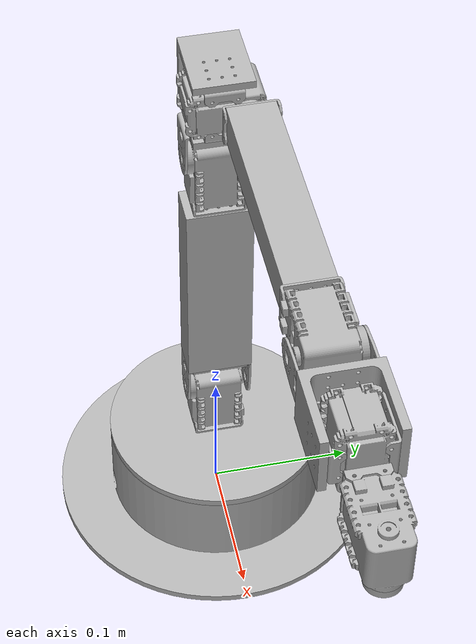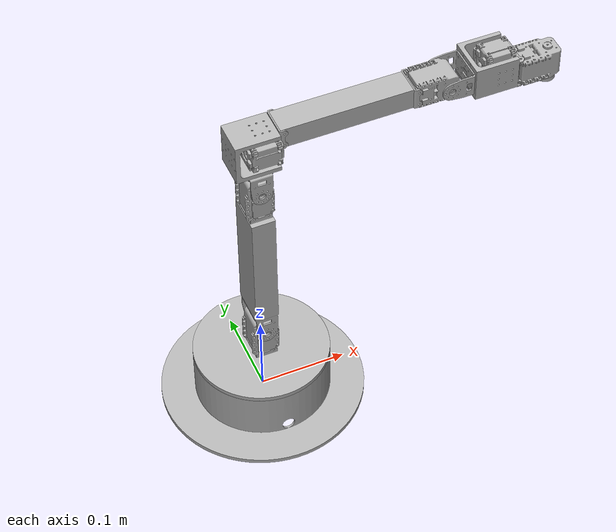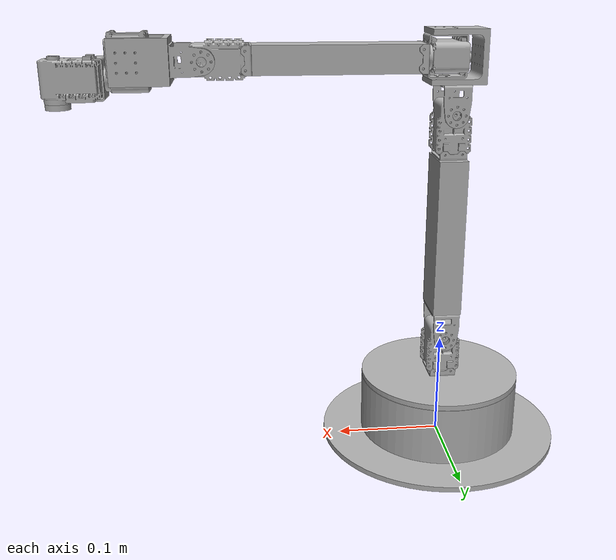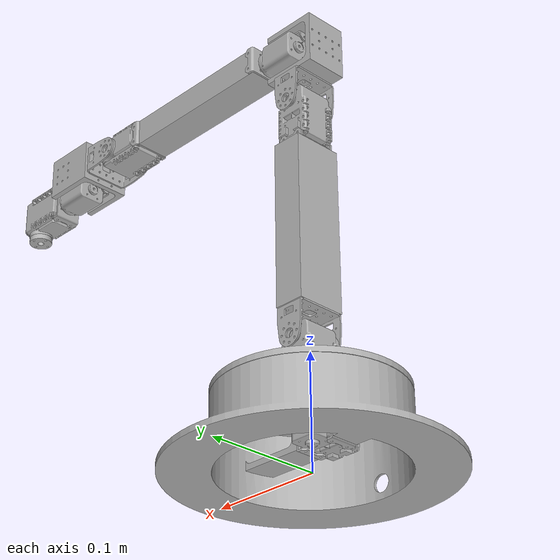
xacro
<?xml version="1.0" ?>
<robot name="mvp_arm_6dof_v4" xmlns:xacro="http://www.ros.org/wiki/xacro">

<xacro:include filename="$(find mvp_arm_6dof_v4_description)/urdf/materials.xacro" />
<xacro:include filename="$(find mvp_arm_6dof_v4_description)/urdf/mvp_arm_6dof_v4.trans" />
<xacro:include filename="$(find mvp_arm_6dof_v4_description)/urdf/mvp_arm_6dof_v4.gazebo" />
<link name="base_link">
  <inertial>
    <origin rpy="0 0 0" xyz="1.5273427923512274e-08 -0.0012615194115251204 0.015200351763726415"/>
    <mass value="1.6606259711147333"/>
    <inertia ixx="0.006748" ixy="0.0" ixz="-0.0" iyy="0.007016" iyz="4.2e-05" izz="0.012699"/>
  </inertial>
  <visual>
    <origin rpy="0 0 0" xyz="0 0 0"/>
    <geometry>
      <mesh filename="package://mvp_arm_6dof_v4_description/meshes/base_link.stl" scale="0.001 0.001 0.001"/>
    </geometry>
    <material name="silver"/>
  </visual>
  <collision>
    <origin rpy="0 0 0" xyz="0 0 0"/>
    <geometry>
      <mesh filename="package://mvp_arm_6dof_v4_description/meshes/base_link.stl" scale="0.001 0.001 0.001"/>
    </geometry>
  </collision>
</link>

<link name="f3Bracket_1">
  <inertial>
    <origin rpy="0 0 0" xyz="0.0018413874270871398 8.06819888676813e-15 2.0816681711721685e-17"/>
    <mass value="0.0016262220015435807"/>
    <inertia ixx="0.0" ixy="-0.0" ixz="-0.0" iyy="0.0" iyz="0.0" izz="0.0"/>
  </inertial>
  <visual>
    <origin rpy="0 0 0" xyz="0.019 0.01475 -0.041"/>
    <geometry>
      <mesh filename="package://mvp_arm_6dof_v4_description/meshes/f3Bracket_1.stl" scale="0.001 0.001 0.001"/>
    </geometry>
    <material name="silver"/>
  </visual>
  <collision>
    <origin rpy="0 0 0" xyz="0.019 0.01475 -0.041"/>
    <geometry>
      <mesh filename="package://mvp_arm_6dof_v4_description/meshes/f3Bracket_1.stl" scale="0.001 0.001 0.001"/>
    </geometry>
  </collision>
</link>

<link name="f3Bracket__1__1">
  <inertial>
    <origin rpy="0 0 0" xyz="-0.0018413874270886074 6.831341048396666e-15 -3.469446951953614e-17"/>
    <mass value="0.0016262220015435807"/>
    <inertia ixx="0.0" ixy="0.0" ixz="0.0" iyy="0.0" iyz="-0.0" izz="0.0"/>
  </inertial>
  <visual>
    <origin rpy="0 0 0" xyz="-0.019 0.01475 -0.041"/>
    <geometry>
      <mesh filename="package://mvp_arm_6dof_v4_description/meshes/f3Bracket__1__1.stl" scale="0.001 0.001 0.001"/>
    </geometry>
    <material name="silver"/>
  </visual>
  <collision>
    <origin rpy="0 0 0" xyz="-0.019 0.01475 -0.041"/>
    <geometry>
      <mesh filename="package://mvp_arm_6dof_v4_description/meshes/f3Bracket__1__1.stl" scale="0.001 0.001 0.001"/>
    </geometry>
  </collision>
</link>

<link name="AX12A_servo_1">
  <inertial>
    <origin rpy="0 0 0" xyz="0.013500709359147614 -0.005876867522658821 -0.01479497142329602"/>
    <mass value="0.3366787209762054"/>
    <inertia ixx="9.7e-05" ixy="-0.0" ixz="-0.0" iyy="5.4e-05" iyz="-1e-06" izz="8.2e-05"/>
  </inertial>
  <visual>
    <origin rpy="0 0 0" xyz="0.0135 0.00675 -0.057"/>
    <geometry>
      <mesh filename="package://mvp_arm_6dof_v4_description/meshes/AX12A_servo_1.stl" scale="0.001 0.001 0.001"/>
    </geometry>
    <material name="silver"/>
  </visual>
  <collision>
    <origin rpy="0 0 0" xyz="0.0135 0.00675 -0.057"/>
    <geometry>
      <mesh filename="package://mvp_arm_6dof_v4_description/meshes/AX12A_servo_1.stl" scale="0.001 0.001 0.001"/>
    </geometry>
  </collision>
</link>

<link name="base_lid__1">
  <inertial>
    <origin rpy="0 0 0" xyz="-3.907985046680551e-16 1.8474111129762605e-15 0.0024995000000005013"/>
    <mass value="0.7384184020105663"/>
    <inertia ixx="0.001114" ixy="-0.0" ixz="0.0" iyy="0.001114" iyz="0.0" izz="0.002224"/>
  </inertial>
  <visual>
    <origin rpy="0 0 0" xyz="0.0 -0.0 -0.06175"/>
    <geometry>
      <mesh filename="package://mvp_arm_6dof_v4_description/meshes/base_lid__1.stl" scale="0.001 0.001 0.001"/>
    </geometry>
    <material name="silver"/>
  </visual>
  <collision>
    <origin rpy="0 0 0" xyz="0.0 -0.0 -0.06175"/>
    <geometry>
      <mesh filename="package://mvp_arm_6dof_v4_description/meshes/base_lid__1.stl" scale="0.001 0.001 0.001"/>
    </geometry>
  </collision>
</link>

<link name="f3Bracket__2__1">
  <inertial>
    <origin rpy="0 0 0" xyz="-6.31050767196939e-15 2.4780177909633494e-15 0.0018408874270881143"/>
    <mass value="0.0016262220015435807"/>
    <inertia ixx="0.0" ixy="-0.0" ixz="0.0" iyy="0.0" iyz="0.0" izz="0.0"/>
  </inertial>
  <visual>
    <origin rpy="0 0 0" xyz="0.0 -0.0 -0.06675"/>
    <geometry>
      <mesh filename="package://mvp_arm_6dof_v4_description/meshes/f3Bracket__2__1.stl" scale="0.001 0.001 0.001"/>
    </geometry>
    <material name="silver"/>
  </visual>
  <collision>
    <origin rpy="0 0 0" xyz="0.0 -0.0 -0.06675"/>
    <geometry>
      <mesh filename="package://mvp_arm_6dof_v4_description/meshes/f3Bracket__2__1.stl" scale="0.001 0.001 0.001"/>
    </geometry>
  </collision>
</link>

<link name="AX12A_servo__1__1">
  <inertial>
    <origin rpy="0 0 0" xyz="-0.007999290640852062 0.01479397142329844 0.02337263247733931"/>
    <mass value="0.3366787209762054"/>
    <inertia ixx="9.7e-05" ixy="0.0" ixz="-0.0" iyy="8.2e-05" iyz="1e-06" izz="5.4e-05"/>
  </inertial>
  <visual>
    <origin rpy="0 0 0" xyz="-0.008 0.015999 -0.07225"/>
    <geometry>
      <mesh filename="package://mvp_arm_6dof_v4_description/meshes/AX12A_servo__1__1.stl" scale="0.001 0.001 0.001"/>
    </geometry>
    <material name="silver"/>
  </visual>
  <collision>
    <origin rpy="0 0 0" xyz="-0.008 0.015999 -0.07225"/>
    <geometry>
      <mesh filename="package://mvp_arm_6dof_v4_description/meshes/AX12A_servo__1__1.stl" scale="0.001 0.001 0.001"/>
    </geometry>
  </collision>
</link>

<link name="f2Bracket_1">
  <inertial>
    <origin rpy="0 0 0" xyz="-3.2040755970985657e-06 0.020999000000001256 0.016207495960826337"/>
    <mass value="0.0037556666472927302"/>
    <inertia ixx="2e-06" ixy="-0.0" ixz="0.0" iyy="1e-06" iyz="0.0" izz="1e-06"/>
  </inertial>
  <visual>
    <origin rpy="0 0 0" xyz="0.0 0.020749 -0.10825"/>
    <geometry>
      <mesh filename="package://mvp_arm_6dof_v4_description/meshes/f2Bracket_1.stl" scale="0.001 0.001 0.001"/>
    </geometry>
    <material name="silver"/>
  </visual>
  <collision>
    <origin rpy="0 0 0" xyz="0.0 0.020749 -0.10825"/>
    <geometry>
      <mesh filename="package://mvp_arm_6dof_v4_description/meshes/f2Bracket_1.stl" scale="0.001 0.001 0.001"/>
    </geometry>
  </collision>
</link>

<link name="shoulderArm__1">
  <inertial>
    <origin rpy="0 0 0" xyz="4.087757237730653e-07 4.462142461081342e-15 0.07500026947793709"/>
    <mass value="1.4306625"/>
    <inertia ixx="0.002924" ixy="0.0" ixz="-0.0" iyy="0.002769" iyz="-0.0" izz="0.000328"/>
  </inertial>
  <visual>
    <origin rpy="0 0 0" xyz="5e-06 -0.00025 -0.134703"/>
    <geometry>
      <mesh filename="package://mvp_arm_6dof_v4_description/meshes/shoulderArm__1.stl" scale="0.001 0.001 0.001"/>
    </geometry>
    <material name="silver"/>
  </visual>
  <collision>
    <origin rpy="0 0 0" xyz="5e-06 -0.00025 -0.134703"/>
    <geometry>
      <mesh filename="package://mvp_arm_6dof_v4_description/meshes/shoulderArm__1.stl" scale="0.001 0.001 0.001"/>
    </geometry>
  </collision>
</link>

<link name="f3Bracket__3__1">
  <inertial>
    <origin rpy="0 0 0" xyz="4.0877572965058626e-07 7.941618283130447e-15 0.0018416569050248022"/>
    <mass value="0.0016262220015435807"/>
    <inertia ixx="0.0" ixy="0.0" ixz="-0.0" iyy="0.0" iyz="0.0" izz="0.0"/>
  </inertial>
  <visual>
    <origin rpy="0 0 0" xyz="5e-06 -0.00025 -0.284703"/>
    <geometry>
      <mesh filename="package://mvp_arm_6dof_v4_description/meshes/f3Bracket__3__1.stl" scale="0.001 0.001 0.001"/>
    </geometry>
    <material name="silver"/>
  </visual>
  <collision>
    <origin rpy="0 0 0" xyz="5e-06 -0.00025 -0.284703"/>
    <geometry>
      <mesh filename="package://mvp_arm_6dof_v4_description/meshes/f3Bracket__3__1.stl" scale="0.001 0.001 0.001"/>
    </geometry>
  </collision>
</link>

<link name="AX12A_servo__2__1">
  <inertial>
    <origin rpy="0 0 0" xyz="0.008001118134871487 0.014793971423305203 0.02337340195527582"/>
    <mass value="0.3366787209762054"/>
    <inertia ixx="9.7e-05" ixy="0.0" ixz="-0.0" iyy="8.2e-05" iyz="1e-06" izz="5.4e-05"/>
  </inertial>
  <visual>
    <origin rpy="0 0 0" xyz="0.008005 0.015749 -0.290203"/>
    <geometry>
      <mesh filename="package://mvp_arm_6dof_v4_description/meshes/AX12A_servo__2__1.stl" scale="0.001 0.001 0.001"/>
    </geometry>
    <material name="silver"/>
  </visual>
  <collision>
    <origin rpy="0 0 0" xyz="0.008005 0.015749 -0.290203"/>
    <geometry>
      <mesh filename="package://mvp_arm_6dof_v4_description/meshes/AX12A_servo__2__1.stl" scale="0.001 0.001 0.001"/>
    </geometry>
  </collision>
</link>

<link name="f2Bracket__1__1">
  <inertial>
    <origin rpy="0 0 0" xyz="-2.7952998737051964e-06 0.020999000000009316 0.016208265438762803"/>
    <mass value="0.0037556666472927302"/>
    <inertia ixx="2e-06" ixy="-0.0" ixz="0.0" iyy="1e-06" iyz="0.0" izz="1e-06"/>
  </inertial>
  <visual>
    <origin rpy="0 0 0" xyz="5e-06 0.020499 -0.326203"/>
    <geometry>
      <mesh filename="package://mvp_arm_6dof_v4_description/meshes/f2Bracket__1__1.stl" scale="0.001 0.001 0.001"/>
    </geometry>
    <material name="silver"/>
  </visual>
  <collision>
    <origin rpy="0 0 0" xyz="5e-06 0.020499 -0.326203"/>
    <geometry>
      <mesh filename="package://mvp_arm_6dof_v4_description/meshes/f2Bracket__1__1.stl" scale="0.001 0.001 0.001"/>
    </geometry>
  </collision>
</link>

<link name="axis3-4_connector__1">
  <inertial>
    <origin rpy="0 0 0" xyz="-0.007929416125064691 7.741765706693708e-09 0.02400003895587355"/>
    <mass value="0.2107220147290529"/>
    <inertia ixx="0.000105" ixy="0.0" ixz="-0.0" iyy="0.000131" iyz="-0.0" izz="8e-05"/>
  </inertial>
  <visual>
    <origin rpy="0 0 0" xyz="9e-06 -0.0005 -0.352657"/>
    <geometry>
      <mesh filename="package://mvp_arm_6dof_v4_description/meshes/axis3-4_connector__1.stl" scale="0.001 0.001 0.001"/>
    </geometry>
    <material name="silver"/>
  </visual>
  <collision>
    <origin rpy="0 0 0" xyz="9e-06 -0.0005 -0.352657"/>
    <geometry>
      <mesh filename="package://mvp_arm_6dof_v4_description/meshes/axis3-4_connector__1.stl" scale="0.001 0.001 0.001"/>
    </geometry>
  </collision>
</link>

<link name="f3Bracket__4__1">
  <inertial>
    <origin rpy="0 0 0" xyz="-0.008000182448553526 5.293942367812221e-15 0.0018414263829612532"/>
    <mass value="0.0016262220015435807"/>
    <inertia ixx="0.0" ixy="-0.0" ixz="-0.0" iyy="0.0" iyz="0.0" izz="0.0"/>
  </inertial>
  <visual>
    <origin rpy="0 0 0" xyz="-0.015991 -0.0005 -0.357657"/>
    <geometry>
      <mesh filename="package://mvp_arm_6dof_v4_description/meshes/f3Bracket__4__1.stl" scale="0.001 0.001 0.001"/>
    </geometry>
    <material name="silver"/>
  </visual>
  <collision>
    <origin rpy="0 0 0" xyz="-0.015991 -0.0005 -0.357657"/>
    <geometry>
      <mesh filename="package://mvp_arm_6dof_v4_description/meshes/f3Bracket__4__1.stl" scale="0.001 0.001 0.001"/>
    </geometry>
  </collision>
</link>

<link name="f3Bracket__5__1">
  <inertial>
    <origin rpy="0 0 0" xyz="-0.008000182448552978 2.045510028719777e-14 -0.0018413484712136996"/>
    <mass value="0.0016262220015435807"/>
    <inertia ixx="0.0" ixy="-0.0" ixz="0.0" iyy="0.0" iyz="0.0" izz="0.0"/>
  </inertial>
  <visual>
    <origin rpy="0 0 0" xyz="-0.015991 -0.0005 -0.395657"/>
    <geometry>
      <mesh filename="package://mvp_arm_6dof_v4_description/meshes/f3Bracket__5__1.stl" scale="0.001 0.001 0.001"/>
    </geometry>
    <material name="silver"/>
  </visual>
  <collision>
    <origin rpy="0 0 0" xyz="-0.015991 -0.0005 -0.395657"/>
    <geometry>
      <mesh filename="package://mvp_arm_6dof_v4_description/meshes/f3Bracket__5__1.stl" scale="0.001 0.001 0.001"/>
    </geometry>
  </collision>
</link>

<link name="AX12A_servo__3__1">
  <inertial>
    <origin rpy="0 0 0" xyz="-0.014794153871849637 -0.005876867522647733 -0.013500670403273962"/>
    <mass value="0.3366787209762054"/>
    <inertia ixx="8.2e-05" ixy="-1e-06" ixz="0.0" iyy="5.4e-05" iyz="0.0" izz="9.7e-05"/>
  </inertial>
  <visual>
    <origin rpy="0 0 0" xyz="-0.02399 -0.0085 -0.390157"/>
    <geometry>
      <mesh filename="package://mvp_arm_6dof_v4_description/meshes/AX12A_servo__3__1.stl" scale="0.001 0.001 0.001"/>
    </geometry>
    <material name="silver"/>
  </visual>
  <collision>
    <origin rpy="0 0 0" xyz="-0.02399 -0.0085 -0.390157"/>
    <geometry>
      <mesh filename="package://mvp_arm_6dof_v4_description/meshes/AX12A_servo__3__1.stl" scale="0.001 0.001 0.001"/>
    </geometry>
  </collision>
</link>

<link name="f3Bracket__6__1">
  <inertial>
    <origin rpy="0 0 0" xyz="0.001841704978532227 1.7305601396344628e-14 3.8955867198708916e-08"/>
    <mass value="0.0016262220015435807"/>
    <inertia ixx="0.0" ixy="0.0" ixz="0.0" iyy="0.0" iyz="0.0" izz="0.0"/>
  </inertial>
  <visual>
    <origin rpy="0 0 0" xyz="-0.02874 -0.01525 -0.376657"/>
    <geometry>
      <mesh filename="package://mvp_arm_6dof_v4_description/meshes/f3Bracket__6__1.stl" scale="0.001 0.001 0.001"/>
    </geometry>
    <material name="silver"/>
  </visual>
  <collision>
    <origin rpy="0 0 0" xyz="-0.02874 -0.01525 -0.376657"/>
    <geometry>
      <mesh filename="package://mvp_arm_6dof_v4_description/meshes/f3Bracket__6__1.stl" scale="0.001 0.001 0.001"/>
    </geometry>
  </collision>
</link>

<link name="axis4ARM__1">
  <inertial>
    <origin rpy="0 0 0" xyz="0.0750003175514446 3.053980679457169e-14 3.895587269431289e-08"/>
    <mass value="0.9125625000000004"/>
    <inertia ixx="0.000121" ixy="-0.0" ixz="-0.0" iyy="0.001759" iyz="-0.0" izz="0.001784"/>
  </inertial>
  <visual>
    <origin rpy="0 0 0" xyz="-0.030328 -0.01525 -0.376657"/>
    <geometry>
      <mesh filename="package://mvp_arm_6dof_v4_description/meshes/axis4ARM__1.stl" scale="0.001 0.001 0.001"/>
    </geometry>
    <material name="silver"/>
  </visual>
  <collision>
    <origin rpy="0 0 0" xyz="-0.030328 -0.01525 -0.376657"/>
    <geometry>
      <mesh filename="package://mvp_arm_6dof_v4_description/meshes/axis4ARM__1.stl" scale="0.001 0.001 0.001"/>
    </geometry>
  </collision>
</link>

<link name="f3Bracket__7__1">
  <inertial>
    <origin rpy="0 0 0" xyz="0.0018417049785319495 4.3933606752588616e-14 3.895586681013086e-08"/>
    <mass value="0.0016262220015435807"/>
    <inertia ixx="0.0" ixy="0.0" ixz="0.0" iyy="0.0" iyz="0.0" izz="0.0"/>
  </inertial>
  <visual>
    <origin rpy="0 0 0" xyz="-0.180328 -0.01525 -0.376657"/>
    <geometry>
      <mesh filename="package://mvp_arm_6dof_v4_description/meshes/f3Bracket__7__1.stl" scale="0.001 0.001 0.001"/>
    </geometry>
    <material name="silver"/>
  </visual>
  <collision>
    <origin rpy="0 0 0" xyz="-0.180328 -0.01525 -0.376657"/>
    <geometry>
      <mesh filename="package://mvp_arm_6dof_v4_description/meshes/f3Bracket__7__1.stl" scale="0.001 0.001 0.001"/>
    </geometry>
  </collision>
</link>

<link name="AX12A_servo__4__1">
  <inertial>
    <origin rpy="0 0 0" xyz="0.023373450028783493 -0.014794971423247538 -0.00799925168497867"/>
    <mass value="0.3366787209762054"/>
    <inertia ixx="5.4e-05" ixy="-1e-06" ixz="-0.0" iyy="8.2e-05" iyz="-0.0" izz="9.7e-05"/>
  </inertial>
  <visual>
    <origin rpy="0 0 0" xyz="-0.185828 -0.03125 -0.384657"/>
    <geometry>
      <mesh filename="package://mvp_arm_6dof_v4_description/meshes/AX12A_servo__4__1.stl" scale="0.001 0.001 0.001"/>
    </geometry>
    <material name="silver"/>
  </visual>
  <collision>
    <origin rpy="0 0 0" xyz="-0.185828 -0.03125 -0.384657"/>
    <geometry>
      <mesh filename="package://mvp_arm_6dof_v4_description/meshes/AX12A_servo__4__1.stl" scale="0.001 0.001 0.001"/>
    </geometry>
  </collision>
</link>

<link name="f2Bracket__2__1">
  <inertial>
    <origin rpy="0 0 0" xyz="0.016208313512270894 -0.020999999999945295 -3.165119723091969e-06"/>
    <mass value="0.0037556666472927302"/>
    <inertia ixx="1e-06" ixy="0.0" ixz="0.0" iyy="1e-06" iyz="0.0" izz="2e-06"/>
  </inertial>
  <visual>
    <origin rpy="0 0 0" xyz="-0.221828 -0.036 -0.376657"/>
    <geometry>
      <mesh filename="package://mvp_arm_6dof_v4_description/meshes/f2Bracket__2__1.stl" scale="0.001 0.001 0.001"/>
    </geometry>
    <material name="silver"/>
  </visual>
  <collision>
    <origin rpy="0 0 0" xyz="-0.221828 -0.036 -0.376657"/>
    <geometry>
      <mesh filename="package://mvp_arm_6dof_v4_description/meshes/f2Bracket__2__1.stl" scale="0.001 0.001 0.001"/>
    </geometry>
  </collision>
</link>

<link name="axis5-6_connector__1">
  <inertial>
    <origin rpy="0 0 0" xyz="0.01857085335287617 3.321440344983273e-13 4.399898363427468e-07"/>
    <mass value="0.2107220147290529"/>
    <inertia ixx="0.000105" ixy="0.0" ixz="-0.0" iyy="8e-05" iyz="0.0" izz="0.000131"/>
  </inertial>
  <visual>
    <origin rpy="0 0 0" xyz="-0.248282 -0.015 -0.376652"/>
    <geometry>
      <mesh filename="package://mvp_arm_6dof_v4_description/meshes/axis5-6_connector__1.stl" scale="0.001 0.001 0.001"/>
    </geometry>
    <material name="silver"/>
  </visual>
  <collision>
    <origin rpy="0 0 0" xyz="-0.248282 -0.015 -0.376652"/>
    <geometry>
      <mesh filename="package://mvp_arm_6dof_v4_description/meshes/axis5-6_connector__1.stl" scale="0.001 0.001 0.001"/>
    </geometry>
  </collision>
</link>

<link name="f3Bracket__9__1">
  <inertial>
    <origin rpy="0 0 0" xyz="-0.007999912970621526 -0.0018413874269337244 4.477315920237146e-07"/>
    <mass value="0.0016262220015435807"/>
    <inertia ixx="0.0" ixy="-0.0" ixz="-0.0" iyy="0.0" iyz="-0.0" izz="0.0"/>
  </inertial>
  <visual>
    <origin rpy="0 0 0" xyz="-0.290782 -0.034 -0.376652"/>
    <geometry>
      <mesh filename="package://mvp_arm_6dof_v4_description/meshes/f3Bracket__9__1.stl" scale="0.001 0.001 0.001"/>
    </geometry>
    <material name="silver"/>
  </visual>
  <collision>
    <origin rpy="0 0 0" xyz="-0.290782 -0.034 -0.376652"/>
    <geometry>
      <mesh filename="package://mvp_arm_6dof_v4_description/meshes/f3Bracket__9__1.stl" scale="0.001 0.001 0.001"/>
    </geometry>
  </collision>
</link>

<link name="f3Bracket__8__1">
  <inertial>
    <origin rpy="0 0 0" xyz="-0.007999912970604595 0.001841387427427945 4.477315904138912e-07"/>
    <mass value="0.0016262220015435807"/>
    <inertia ixx="0.0" ixy="-0.0" ixz="0.0" iyy="0.0" iyz="0.0" izz="0.0"/>
  </inertial>
  <visual>
    <origin rpy="0 0 0" xyz="-0.290782 0.004 -0.376652"/>
    <geometry>
      <mesh filename="package://mvp_arm_6dof_v4_description/meshes/f3Bracket__8__1.stl" scale="0.001 0.001 0.001"/>
    </geometry>
    <material name="silver"/>
  </visual>
  <collision>
    <origin rpy="0 0 0" xyz="-0.290782 0.004 -0.376652"/>
    <geometry>
      <mesh filename="package://mvp_arm_6dof_v4_description/meshes/f3Bracket__8__1.stl" scale="0.001 0.001 0.001"/>
    </geometry>
  </collision>
</link>

<link name="AX12A_servo__5__1">
  <inertial>
    <origin rpy="0 0 0" xyz="-0.01479488439390908 0.013499290641193557 0.005877315254252891"/>
    <mass value="0.3366787209762054"/>
    <inertia ixx="8.2e-05" ixy="0.0" ixz="1e-06" iyy="9.7e-05" iyz="-0.0" izz="5.4e-05"/>
  </inertial>
  <visual>
    <origin rpy="0 0 0" xyz="-0.298782 -0.0015 -0.368652"/>
    <geometry>
      <mesh filename="package://mvp_arm_6dof_v4_description/meshes/AX12A_servo__5__1.stl" scale="0.001 0.001 0.001"/>
    </geometry>
    <material name="silver"/>
  </visual>
  <collision>
    <origin rpy="0 0 0" xyz="-0.298782 -0.0015 -0.368652"/>
    <geometry>
      <mesh filename="package://mvp_arm_6dof_v4_description/meshes/AX12A_servo__5__1.stl" scale="0.001 0.001 0.001"/>
    </geometry>
  </collision>
</link>

<link name="f3Bracket__10__1">
  <inertial>
    <origin rpy="0 0 0" xyz="0.0018409744564744646 3.635963058412628e-13 4.477315913575808e-07"/>
    <mass value="0.0016262220015435807"/>
    <inertia ixx="0.0" ixy="0.0" ixz="-0.0" iyy="0.0" iyz="0.0" izz="0.0"/>
  </inertial>
  <visual>
    <origin rpy="0 0 0" xyz="-0.303532 -0.015 -0.361902"/>
    <geometry>
      <mesh filename="package://mvp_arm_6dof_v4_description/meshes/f3Bracket__10__1.stl" scale="0.001 0.001 0.001"/>
    </geometry>
    <material name="silver"/>
  </visual>
  <collision>
    <origin rpy="0 0 0" xyz="-0.303532 -0.015 -0.361902"/>
    <geometry>
      <mesh filename="package://mvp_arm_6dof_v4_description/meshes/f3Bracket__10__1.stl" scale="0.001 0.001 0.001"/>
    </geometry>
  </collision>
</link>

<link name="AX12A_servo__6__1">
  <inertial>
    <origin rpy="0 0 0" xyz="0.023372719506725925 -0.007999290640479157 -0.01714784581819334"/>
    <mass value="0.3366787209762054"/>
    <inertia ixx="5.4e-05" ixy="-0.0" ixz="1e-06" iyy="9.7e-05" iyz="0.0" izz="8.2e-05"/>
  </inertial>
  <visual>
    <origin rpy="0 0 0" xyz="-0.309032 -0.023 -0.377902"/>
    <geometry>
      <mesh filename="package://mvp_arm_6dof_v4_description/meshes/AX12A_servo__6__1.stl" scale="0.001 0.001 0.001"/>
    </geometry>
    <material name="silver"/>
  </visual>
  <collision>
    <origin rpy="0 0 0" xyz="-0.309032 -0.023 -0.377902"/>
    <geometry>
      <mesh filename="package://mvp_arm_6dof_v4_description/meshes/AX12A_servo__6__1.stl" scale="0.001 0.001 0.001"/>
    </geometry>
  </collision>
</link>

<link name="dummy_gripper_1">
  <inertial>
    <origin rpy="0 0 0" xyz="-4.129705710731457e-07 3.828482669776534e-13 -0.0025003172414899133"/>
    <mass value="0.012452209064318365"/>
    <inertia ixx="0.0" ixy="-0.0" ixz="0.0" iyy="0.0" iyz="0.0" izz="1e-06"/>
  </inertial>
  <visual>
    <origin rpy="0 0 0" xyz="-0.345032 -0.015 -0.34121"/>
    <geometry>
      <mesh filename="package://mvp_arm_6dof_v4_description/meshes/dummy_gripper_1.stl" scale="0.001 0.001 0.001"/>
    </geometry>
    <material name="silver"/>
  </visual>
  <collision>
    <origin rpy="0 0 0" xyz="-0.345032 -0.015 -0.34121"/>
    <geometry>
      <mesh filename="package://mvp_arm_6dof_v4_description/meshes/dummy_gripper_1.stl" scale="0.001 0.001 0.001"/>
    </geometry>
  </collision>
</link>

<joint name="Rigid14" type="fixed">
  <origin rpy="0 0 0" xyz="-0.019 -0.01475 0.041"/>
  <parent link="base_link"/>
  <child link="f3Bracket_1"/>
</joint>

<joint name="Rigid15" type="fixed">
  <origin rpy="0 0 0" xyz="0.019 -0.01475 0.041"/>
  <parent link="base_link"/>
  <child link="f3Bracket__1__1"/>
</joint>

<joint name="Rigid16" type="fixed">
  <origin rpy="0 0 0" xyz="0.0055 0.008 0.016"/>
  <parent link="f3Bracket_1"/>
  <child link="AX12A_servo_1"/>
</joint>

<joint name="Rev1" type="continuous">
  <origin rpy="0 0 0" xyz="0.0135 0.00675 0.00475"/>
  <parent link="AX12A_servo_1"/>
  <child link="base_lid__1"/>
  <axis xyz="0.0 0.0 -1.0"/>
</joint>

<joint name="Rigid18" type="fixed">
  <origin rpy="0 0 0" xyz="0.0 0.0 0.005"/>
  <parent link="base_lid__1"/>
  <child link="f3Bracket__2__1"/>
</joint>

<joint name="Rigid19" type="fixed">
  <origin rpy="0 0 0" xyz="0.008 -0.015999 0.0055"/>
  <parent link="f3Bracket__2__1"/>
  <child link="AX12A_servo__1__1"/>
</joint>

<joint name="Rev2" type="continuous">
  <origin rpy="0 0 0" xyz="-0.008 -0.00475 0.036"/>
  <parent link="AX12A_servo__1__1"/>
  <child link="f2Bracket_1"/>
  <axis xyz="0.0 1.0 0.0"/>
</joint>

<joint name="Rigid23" type="fixed">
  <origin rpy="0 0 0" xyz="-5e-06 0.020999 0.026453"/>
  <parent link="f2Bracket_1"/>
  <child link="shoulderArm__1"/>
</joint>

<joint name="Rigid24" type="fixed">
  <origin rpy="0 0 0" xyz="0.0 0.0 0.15"/>
  <parent link="shoulderArm__1"/>
  <child link="f3Bracket__3__1"/>
</joint>

<joint name="Rigid25" type="fixed">
  <origin rpy="0 0 0" xyz="-0.008 -0.015999 0.0055"/>
  <parent link="f3Bracket__3__1"/>
  <child link="AX12A_servo__2__1"/>
</joint>

<joint name="Rev3" type="continuous">
  <origin rpy="0 0 0" xyz="0.008 -0.00475 0.036"/>
  <parent link="AX12A_servo__2__1"/>
  <child link="f2Bracket__1__1"/>
  <axis xyz="-0.0 1.0 -0.0"/>
</joint>

<joint name="Rigid32" type="fixed">
  <origin rpy="0 0 0" xyz="-4e-06 0.020999 0.026454"/>
  <parent link="f2Bracket__1__1"/>
  <child link="axis3-4_connector__1"/>
</joint>

<joint name="Rigid33" type="fixed">
  <origin rpy="0 0 0" xyz="0.016 0.0 0.005"/>
  <parent link="axis3-4_connector__1"/>
  <child link="f3Bracket__4__1"/>
</joint>

<joint name="Rigid34" type="fixed">
  <origin rpy="0 0 0" xyz="0.016 0.0 0.043"/>
  <parent link="axis3-4_connector__1"/>
  <child link="f3Bracket__5__1"/>
</joint>

<joint name="Rigid35" type="fixed">
  <origin rpy="0 0 0" xyz="0.007999 0.008 -0.0055"/>
  <parent link="f3Bracket__5__1"/>
  <child link="AX12A_servo__3__1"/>
</joint>

<joint name="Rev4" type="continuous">
  <origin rpy="0 0 0" xyz="0.00475 0.00675 -0.0135"/>
  <parent link="AX12A_servo__3__1"/>
  <child link="f3Bracket__6__1"/>
  <axis xyz="-1.0 -0.0 -0.0"/>
</joint>

<joint name="Rigid37" type="fixed">
  <origin rpy="0 0 0" xyz="0.001588 0.0 0.0"/>
  <parent link="f3Bracket__6__1"/>
  <child link="axis4ARM__1"/>
</joint>

<joint name="Rigid38" type="fixed">
  <origin rpy="0 0 0" xyz="0.15 0.0 0.0"/>
  <parent link="axis4ARM__1"/>
  <child link="f3Bracket__7__1"/>
</joint>

<joint name="Rigid39" type="fixed">
  <origin rpy="0 0 0" xyz="0.0055 0.016 0.008"/>
  <parent link="f3Bracket__7__1"/>
  <child link="AX12A_servo__4__1"/>
</joint>

<joint name="Rev5" type="continuous">
  <origin rpy="0 0 0" xyz="0.036 0.00475 -0.008"/>
  <parent link="AX12A_servo__4__1"/>
  <child link="f2Bracket__2__1"/>
  <axis xyz="0.0 -1.0 0.0"/>
</joint>

<joint name="Rigid41" type="fixed">
  <origin rpy="0 0 0" xyz="0.026454 -0.021 -5e-06"/>
  <parent link="f2Bracket__2__1"/>
  <child link="axis5-6_connector__1"/>
</joint>

<joint name="Rigid42" type="fixed">
  <origin rpy="0 0 0" xyz="0.0425 0.019 0.0"/>
  <parent link="axis5-6_connector__1"/>
  <child link="f3Bracket__9__1"/>
</joint>

<joint name="Rigid43" type="fixed">
  <origin rpy="0 0 0" xyz="0.0425 -0.019 0.0"/>
  <parent link="axis5-6_connector__1"/>
  <child link="f3Bracket__8__1"/>
</joint>

<joint name="Rigid44" type="fixed">
  <origin rpy="0 0 0" xyz="0.008 0.0055 -0.008"/>
  <parent link="f3Bracket__8__1"/>
  <child link="AX12A_servo__5__1"/>
</joint>

<joint name="Rev6" type="continuous">
  <origin rpy="0 0 0" xyz="0.00475 0.0135 -0.00675"/>
  <parent link="AX12A_servo__5__1"/>
  <child link="f3Bracket__10__1"/>
  <axis xyz="1.0 0.0 -0.0"/>
</joint>

<joint name="Rigid46" type="fixed">
  <origin rpy="0 0 0" xyz="0.0055 0.008 0.016"/>
  <parent link="f3Bracket__10__1"/>
  <child link="AX12A_servo__6__1"/>
</joint>

<joint name="gripper_servo" type="continuous">
  <origin rpy="0 0 0" xyz="0.036 -0.008 -0.036692"/>
  <parent link="AX12A_servo__6__1"/>
  <child link="dummy_gripper_1"/>
  <axis xyz="0.0 -0.0 1.0"/>
</joint>

</robot>

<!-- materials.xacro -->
<robot name="mvp_arm_6dof_v4" xmlns:xacro="http://www.ros.org/wiki/xacro" >

<material name="silver">
  <color rgba="0.700 0.700 0.700 1.000"/>
</material>

</robot>

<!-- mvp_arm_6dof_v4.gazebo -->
<robot name="mvp_arm_6dof_v4" xmlns:xacro="http://www.ros.org/wiki/xacro" >

<xacro:property name="body_color" value="Gazebo/Silver" />

<gazebo>
  <plugin filename="libgazebo_ros_control.so" name="control"/>
</gazebo>
<gazebo reference="base_link">
  <material>${body_color}</material>
  <mu1>0.2</mu1>
  <mu2>0.2</mu2>
  <selfCollide>true</selfCollide>
  <gravity>true</gravity>
</gazebo>

<gazebo reference="f3Bracket_1">
  <material>${body_color}</material>
  <mu1>0.2</mu1>
  <mu2>0.2</mu2>
  <selfCollide>true</selfCollide>
</gazebo>

<gazebo reference="f3Bracket__1__1">
  <material>${body_color}</material>
  <mu1>0.2</mu1>
  <mu2>0.2</mu2>
  <selfCollide>true</selfCollide>
</gazebo>

<gazebo reference="AX12A_servo_1">
  <material>${body_color}</material>
  <mu1>0.2</mu1>
  <mu2>0.2</mu2>
  <selfCollide>true</selfCollide>
</gazebo>

<gazebo reference="base_lid__1">
  <material>${body_color}</material>
  <mu1>0.2</mu1>
  <mu2>0.2</mu2>
  <selfCollide>true</selfCollide>
</gazebo>

<gazebo reference="f3Bracket__2__1">
  <material>${body_color}</material>
  <mu1>0.2</mu1>
  <mu2>0.2</mu2>
  <selfCollide>true</selfCollide>
</gazebo>

<gazebo reference="AX12A_servo__1__1">
  <material>${body_color}</material>
  <mu1>0.2</mu1>
  <mu2>0.2</mu2>
  <selfCollide>true</selfCollide>
</gazebo>

<gazebo reference="f2Bracket_1">
  <material>${body_color}</material>
  <mu1>0.2</mu1>
  <mu2>0.2</mu2>
  <selfCollide>true</selfCollide>
</gazebo>

<gazebo reference="shoulderArm__1">
  <material>${body_color}</material>
  <mu1>0.2</mu1>
  <mu2>0.2</mu2>
  <selfCollide>true</selfCollide>
</gazebo>

<gazebo reference="f3Bracket__3__1">
  <material>${body_color}</material>
  <mu1>0.2</mu1>
  <mu2>0.2</mu2>
  <selfCollide>true</selfCollide>
</gazebo>

<gazebo reference="AX12A_servo__2__1">
  <material>${body_color}</material>
  <mu1>0.2</mu1>
  <mu2>0.2</mu2>
  <selfCollide>true</selfCollide>
</gazebo>

<gazebo reference="f2Bracket__1__1">
  <material>${body_color}</material>
  <mu1>0.2</mu1>
  <mu2>0.2</mu2>
  <selfCollide>true</selfCollide>
</gazebo>

<gazebo reference="axis3-4_connector__1">
  <material>${body_color}</material>
  <mu1>0.2</mu1>
  <mu2>0.2</mu2>
  <selfCollide>true</selfCollide>
</gazebo>

<gazebo reference="f3Bracket__4__1">
  <material>${body_color}</material>
  <mu1>0.2</mu1>
  <mu2>0.2</mu2>
  <selfCollide>true</selfCollide>
</gazebo>

<gazebo reference="f3Bracket__5__1">
  <material>${body_color}</material>
  <mu1>0.2</mu1>
  <mu2>0.2</mu2>
  <selfCollide>true</selfCollide>
</gazebo>

<gazebo reference="AX12A_servo__3__1">
  <material>${body_color}</material>
  <mu1>0.2</mu1>
  <mu2>0.2</mu2>
  <selfCollide>true</selfCollide>
</gazebo>

<gazebo reference="f3Bracket__6__1">
  <material>${body_color}</material>
  <mu1>0.2</mu1>
  <mu2>0.2</mu2>
  <selfCollide>true</selfCollide>
</gazebo>

<gazebo reference="axis4ARM__1">
  <material>${body_color}</material>
  <mu1>0.2</mu1>
  <mu2>0.2</mu2>
  <selfCollide>true</selfCollide>
</gazebo>

<gazebo reference="f3Bracket__7__1">
  <material>${body_color}</material>
  <mu1>0.2</mu1>
  <mu2>0.2</mu2>
  <selfCollide>true</selfCollide>
</gazebo>

<gazebo reference="AX12A_servo__4__1">
  <material>${body_color}</material>
  <mu1>0.2</mu1>
  <mu2>0.2</mu2>
  <selfCollide>true</selfCollide>
</gazebo>

<gazebo reference="f2Bracket__2__1">
  <material>${body_color}</material>
  <mu1>0.2</mu1>
  <mu2>0.2</mu2>
  <selfCollide>true</selfCollide>
</gazebo>

<gazebo reference="axis5-6_connector__1">
  <material>${body_color}</material>
  <mu1>0.2</mu1>
  <mu2>0.2</mu2>
  <selfCollide>true</selfCollide>
</gazebo>

<gazebo reference="f3Bracket__9__1">
  <material>${body_color}</material>
  <mu1>0.2</mu1>
  <mu2>0.2</mu2>
  <selfCollide>true</selfCollide>
</gazebo>

<gazebo reference="f3Bracket__8__1">
  <material>${body_color}</material>
  <mu1>0.2</mu1>
  <mu2>0.2</mu2>
  <selfCollide>true</selfCollide>
</gazebo>

<gazebo reference="AX12A_servo__5__1">
  <material>${body_color}</material>
  <mu1>0.2</mu1>
  <mu2>0.2</mu2>
  <selfCollide>true</selfCollide>
</gazebo>

<gazebo reference="f3Bracket__10__1">
  <material>${body_color}</material>
  <mu1>0.2</mu1>
  <mu2>0.2</mu2>
  <selfCollide>true</selfCollide>
</gazebo>

<gazebo reference="AX12A_servo__6__1">
  <material>${body_color}</material>
  <mu1>0.2</mu1>
  <mu2>0.2</mu2>
  <selfCollide>true</selfCollide>
</gazebo>

<gazebo reference="dummy_gripper_1">
  <material>${body_color}</material>
  <mu1>0.2</mu1>
  <mu2>0.2</mu2>
  <selfCollide>true</selfCollide>
</gazebo>

</robot>
